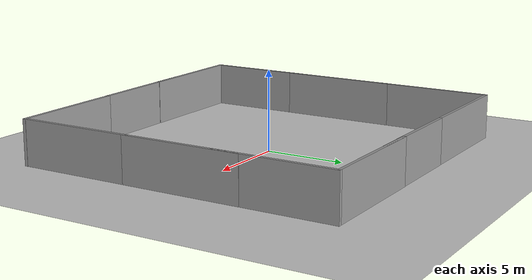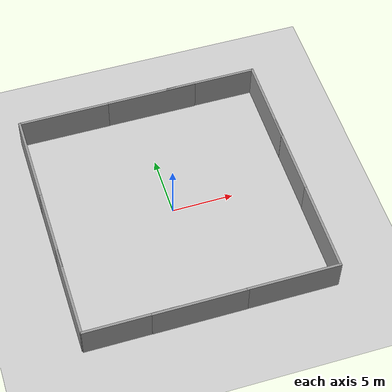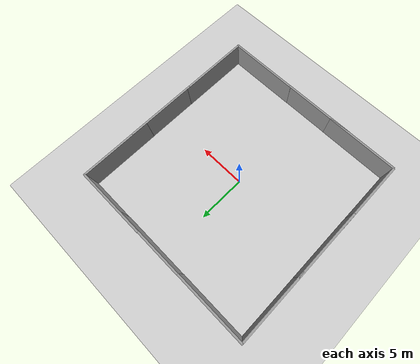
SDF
<sdf version="1.6">
 <world name="default">
  <light name="sun" type="directional">
   <pose>0 0 10 0 -0 0</pose>
   <diffuse>0.8 0.8 0.8 1</diffuse>
   <specular>0.2 0.2 0.2 1</specular>
   <attenuation>
    <range>1000</range>
    <constant>0.9</constant>
    <linear>0.01</linear>
    <quadratic>0.001</quadratic>
   </attenuation>
   <direction>-0.5 0.1 -0.9</direction>
  </light>
  <model name="ground_plane">
   <static>1</static>
   <link name="link">
    <collision name="collision">
     <geometry><plane><normal>0 0 1</normal><size>100 100</size></plane></geometry>
     <surface><friction><ode><mu>100</mu><mu2>50</mu2></ode></friction></surface>
    </collision>
    <visual name="visual">
     <cast_shadows>0</cast_shadows>
     <geometry><plane><normal>0 0 1</normal><size>100 100</size></plane></geometry>
     <material>
      <script><uri>file://media/materials/scripts/gazebo.material</uri><name>Gazebo/Grey</name></script>
     </material>
    </visual>
   </link>
  </model>
  <gravity>0 0 -9.8</gravity>
  <magnetic_field>6e-06 2.3e-05 -4.2e-05</magnetic_field>
  <atmosphere type="adiabatic"/>
  <physics name="default_physics" default="0" type="ode">
   <max_step_size>0.001</max_step_size>
   <real_time_factor>1</real_time_factor>
   <real_time_update_rate>1000</real_time_update_rate>
  </physics>
  <scene><ambient>0.4 0.4 0.4 1</ambient><background>0.7 0.7 0.7 1</background><shadows>1</shadows></scene>
  <spherical_coordinates>
   <surface_model>EARTH_WGS84</surface_model>
   <latitude_deg>0</latitude_deg>
   <longitude_deg>0</longitude_deg>
   <elevation>0</elevation>
   <heading_deg>0</heading_deg>
  </spherical_coordinates>
  <model name="grey_wall_clone">
   <static>1</static>
   <link name="link">
    <pose>0 0 1.4 0 -0 0</pose>
    <collision name="collision"><geometry><box><size>7.5 0.2 2.8</size></box></geometry></collision>
    <visual name="visual">
     <cast_shadows>0</cast_shadows>
     <geometry><box><size>7.5 0.2 2.8</size></box></geometry>
     <material>
      <script>
       <uri>model://grey_wall/materials/scripts</uri>
       <uri>model://grey_wall/materials/textures</uri>
       <name>vrc/grey_wall</name>
      </script>
     </material>
    </visual>
   </link>
   <pose>-6.27384 9.96462 0 0 -0 0</pose>
  </model>
  <model name="grey_wall_clone_0">
   <static>1</static>
   <link name="link">
    <pose>0 0 1.4 0 -0 0</pose>
    <collision name="collision"><geometry><box><size>7.5 0.2 2.8</size></box></geometry></collision>
    <visual name="visual">
     <cast_shadows>0</cast_shadows>
     <geometry><box><size>7.5 0.2 2.8</size></box></geometry>
     <material>
      <script>
       <uri>model://grey_wall/materials/scripts</uri>
       <uri>model://grey_wall/materials/textures</uri>
       <name>vrc/grey_wall</name>
      </script>
     </material>
    </visual>
   </link>
   <pose>1.22709 9.98057 0 0 -0 0</pose>
  </model>
  <model name="grey_wall_clone_1">
   <static>1</static>
   <link name="link">
    <pose>0 0 1.4 0 -0 0</pose>
    <collision name="collision"><geometry><box><size>7.5 0.2 2.8</size></box></geometry></collision>
    <visual name="visual">
     <cast_shadows>0</cast_shadows>
     <geometry><box><size>7.5 0.2 2.8</size></box></geometry>
     <material>
      <script>
       <uri>model://grey_wall/materials/scripts</uri>
       <uri>model://grey_wall/materials/textures</uri>
       <name>vrc/grey_wall</name>
      </script>
     </material>
    </visual>
   </link>
   <pose>6.26487 10.0078 0 0 -0 0</pose>
  </model>
  <model name="grey_wall_clone_2">
   <static>1</static>
   <link name="link">
    <pose>0 0 1.4 0 -0 0</pose>
    <collision name="collision"><geometry><box><size>7.5 0.2 2.8</size></box></geometry></collision>
    <visual name="visual">
     <cast_shadows>0</cast_shadows>
     <geometry><box><size>7.5 0.2 2.8</size></box></geometry>
     <material>
      <script>
       <uri>model://grey_wall/materials/scripts</uri>
       <uri>model://grey_wall/materials/textures</uri>
       <name>vrc/grey_wall</name>
      </script>
     </material>
    </visual>
   </link>
   <pose>6.3641 -10.1741 0 0 -0 0</pose>
  </model>
  <model name="grey_wall_clone_3">
   <static>1</static>
   <link name="link">
    <pose>0 0 1.4 0 -0 0</pose>
    <collision name="collision"><geometry><box><size>7.5 0.2 2.8</size></box></geometry></collision>
    <visual name="visual">
     <cast_shadows>0</cast_shadows>
     <geometry><box><size>7.5 0.2 2.8</size></box></geometry>
     <material>
      <script>
       <uri>model://grey_wall/materials/scripts</uri>
       <uri>model://grey_wall/materials/textures</uri>
       <name>vrc/grey_wall</name>
      </script>
     </material>
    </visual>
   </link>
   <pose>-0.952129 -10.1866 0 0 -0 0</pose>
  </model>
  <model name="grey_wall_clone_4">
   <static>1</static>
   <link name="link">
    <pose>0 0 1.4 0 -0 0</pose>
    <collision name="collision"><geometry><box><size>7.5 0.2 2.8</size></box></geometry></collision>
    <visual name="visual">
     <cast_shadows>0</cast_shadows>
     <geometry><box><size>7.5 0.2 2.8</size></box></geometry>
     <material>
      <script>
       <uri>model://grey_wall/materials/scripts</uri>
       <uri>model://grey_wall/materials/textures</uri>
       <name>vrc/grey_wall</name>
      </script>
     </material>
    </visual>
   </link>
   <pose>-6.25091 -10.1721 0 0 -0 0</pose>
  </model>
  <model name="grey_wall_clone_clone_clone_clone">
   <static>1</static>
   <link name="link">
    <pose>0 0 1.4 0 -0 0</pose>
    <collision name="collision"><geometry><box><size>7.5 0.2 2.8</size></box></geometry></collision>
    <visual name="visual">
     <cast_shadows>0</cast_shadows>
     <geometry><box><size>7.5 0.2 2.8</size></box></geometry>
     <material>
      <script>
       <uri>model://grey_wall/materials/scripts</uri>
       <uri>model://grey_wall/materials/textures</uri>
       <name>vrc/grey_wall</name>
      </script>
     </material>
    </visual>
   </link>
   <pose>-9.94778 6.29634 0 0 -0 1.57</pose>
  </model>
  <model name="grey_wall_clone_clone_clone_clone_clone">
   <static>1</static>
   <link name="link">
    <pose>0 0 1.4 0 -0 0</pose>
    <collision name="collision"><geometry><box><size>7.5 0.2 2.8</size></box></geometry></collision>
    <visual name="visual">
     <cast_shadows>0</cast_shadows>
     <geometry><box><size>7.5 0.2 2.8</size></box></geometry>
     <material>
      <script>
       <uri>model://grey_wall/materials/scripts</uri>
       <uri>model://grey_wall/materials/textures</uri>
       <name>vrc/grey_wall</name>
      </script>
     </material>
    </visual>
   </link>
   <pose>-9.95107 -0.548239 0 0 -0 1.57</pose>
  </model>
  <model name="grey_wall_clone_clone_clone_clone_clone_0">
   <static>1</static>
   <link name="link">
    <pose>0 0 1.4 0 -0 0</pose>
    <collision name="collision"><geometry><box><size>7.5 0.2 2.8</size></box></geometry></collision>
    <visual name="visual">
     <cast_shadows>0</cast_shadows>
     <geometry><box><size>7.5 0.2 2.8</size></box></geometry>
     <material>
      <script>
       <uri>model://grey_wall/materials/scripts</uri>
       <uri>model://grey_wall/materials/textures</uri>
       <name>vrc/grey_wall</name>
      </script>
     </material>
    </visual>
   </link>
   <pose>-9.96592 -6.40948 0 0 -0 1.57</pose>
  </model>
  <model name="grey_wall_clone_clone_clone_clone_clone_1">
   <static>1</static>
   <link name="link">
    <pose>0 0 1.4 0 -0 0</pose>
    <collision name="collision"><geometry><box><size>7.5 0.2 2.8</size></box></geometry></collision>
    <visual name="visual">
     <cast_shadows>0</cast_shadows>
     <geometry><box><size>7.5 0.2 2.8</size></box></geometry>
     <material>
      <script>
       <uri>model://grey_wall/materials/scripts</uri>
       <uri>model://grey_wall/materials/textures</uri>
       <name>vrc/grey_wall</name>
      </script>
     </material>
    </visual>
   </link>
   <pose>10.0054 -6.49591 0 0 -0 1.57</pose>
  </model>
  <model name="grey_wall_clone_clone_clone_clone_clone_2">
   <static>1</static>
   <link name="link">
    <pose>0 0 1.4 0 -0 0</pose>
    <collision name="collision"><geometry><box><size>7.5 0.2 2.8</size></box></geometry></collision>
    <visual name="visual">
     <cast_shadows>0</cast_shadows>
     <geometry><box><size>7.5 0.2 2.8</size></box></geometry>
     <material>
      <script>
       <uri>model://grey_wall/materials/scripts</uri>
       <uri>model://grey_wall/materials/textures</uri>
       <name>vrc/grey_wall</name>
      </script>
     </material>
    </visual>
   </link>
   <pose>10.0213 0.623015 0 0 -0 1.57</pose>
  </model>
  <model name="grey_wall_clone_clone_clone_clone_clone_3">
   <static>1</static>
   <link name="link">
    <pose>0 0 1.4 0 -0 0</pose>
    <collision name="collision"><geometry><box><size>7.5 0.2 2.8</size></box></geometry></collision>
    <visual name="visual">
     <cast_shadows>0</cast_shadows>
     <geometry><box><size>7.5 0.2 2.8</size></box></geometry>
     <material>
      <script>
       <uri>model://grey_wall/materials/scripts</uri>
       <uri>model://grey_wall/materials/textures</uri>
       <name>vrc/grey_wall</name>
      </script>
     </material>
    </visual>
   </link>
   <pose>10.0153 6.35901 0 0 -0 1.57</pose>
  </model>
 </world>
</sdf>
